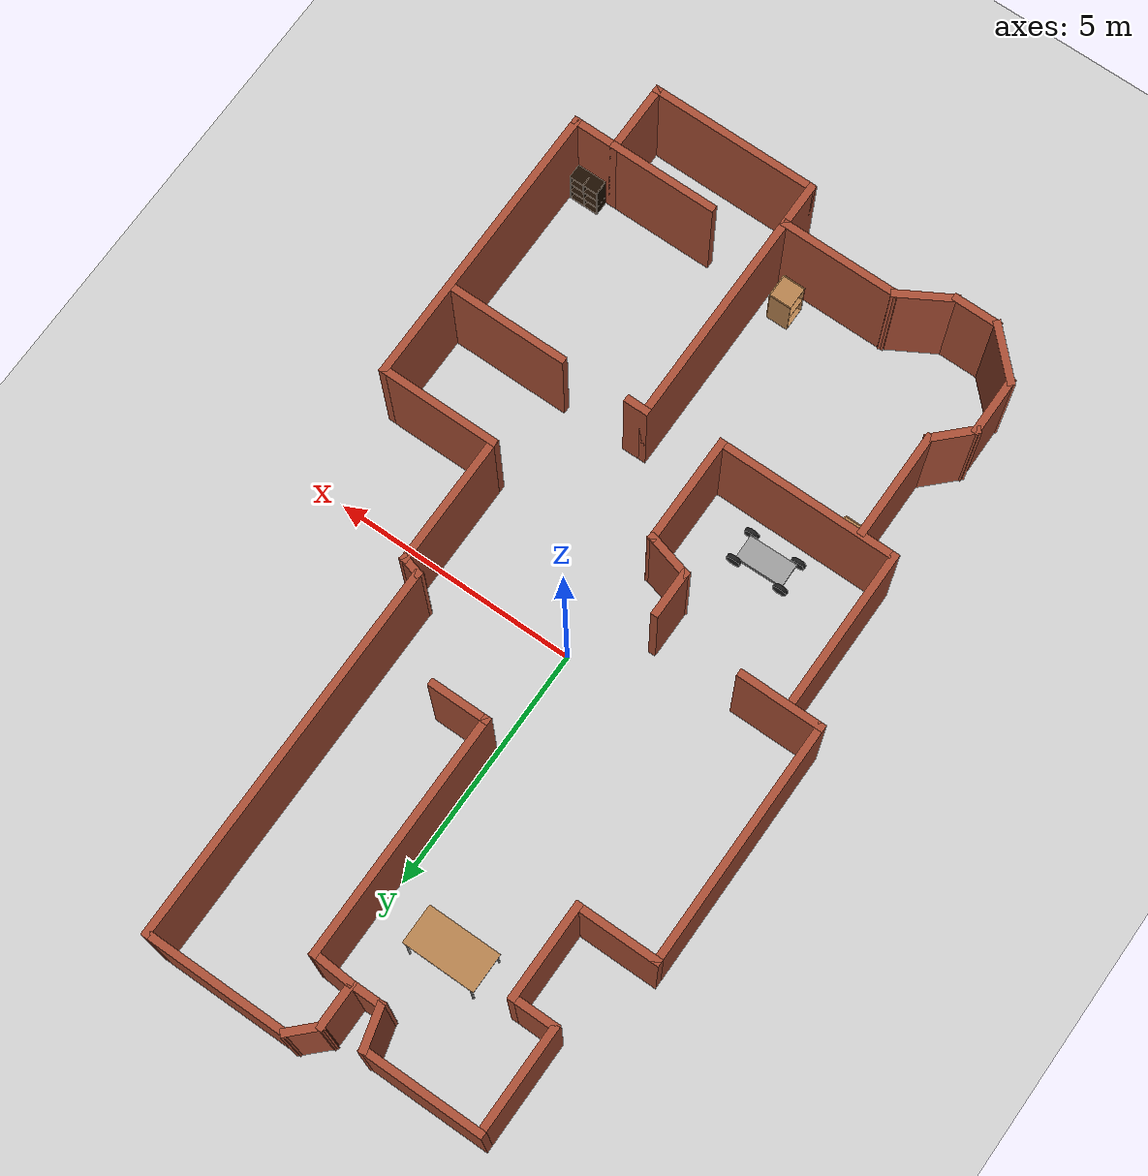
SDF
<sdf version="1.6">
 <world name="default">
  <light name="sun" type="directional">
   <pose>0 0 10 0 -0 0</pose>
   <diffuse>0.8 0.8 0.8 1</diffuse>
   <specular>0.2 0.2 0.2 1</specular>
   <attenuation>
    <range>1000</range>
    <constant>0.9</constant>
    <linear>0.01</linear>
    <quadratic>0.001</quadratic>
   </attenuation>
   <direction>-0.5 0.1 -0.9</direction>
  </light>
  <model name="ground_plane">
   <static>1</static>
   <link name="link">
    <collision name="collision">
     <geometry><plane><normal>0 0 1</normal><size>100 100</size></plane></geometry>
     <surface>
      <contact><collide_bitmask>65535</collide_bitmask></contact>
      <friction><ode><mu>100</mu><mu2>50</mu2></ode></friction>
     </surface>
    </collision>
    <visual name="visual">
     <cast_shadows>0</cast_shadows>
     <geometry><plane><normal>0 0 1</normal><size>100 100</size></plane></geometry>
     <material>
      <script><uri>file://media/materials/scripts/gazebo.material</uri><name>Gazebo/Grey</name></script>
     </material>
    </visual>
   </link>
  </model>
  <gravity>0 0 -9.8</gravity>
  <magnetic_field>6e-06 2.3e-05 -4.2e-05</magnetic_field>
  <atmosphere type="adiabatic"/>
  <physics name="default_physics" default="0" type="ode">
   <max_step_size>0.001</max_step_size>
   <real_time_factor>1</real_time_factor>
   <real_time_update_rate>1000</real_time_update_rate>
  </physics>
  <scene><ambient>0.4 0.4 0.4 1</ambient><background>0.7 0.7 0.7 1</background><shadows>1</shadows></scene>
  <audio><device>default</device></audio>
  <spherical_coordinates>
   <surface_model>EARTH_WGS84</surface_model>
   <latitude_deg>0</latitude_deg>
   <longitude_deg>0</longitude_deg>
   <elevation>0</elevation>
   <heading_deg>0</heading_deg>
  </spherical_coordinates>
  <model name="map_39">
   <pose>0.315575 -0.348174 0 0 -0 0</pose>
   <link name="Wall_0">
    <collision name="Wall_0_Collision">
     <geometry><box><size>2.5 0.15 2.5</size></box></geometry>
     <pose>0 0 1.25 0 -0 0</pose>
    </collision>
    <visual name="Wall_0_Visual">
     <pose>0 0 1.25 0 -0 0</pose>
     <geometry><box><size>2.5 0.15 2.5</size></box></geometry>
     <material>
      <script><uri>file://media/materials/scripts/gazebo.material</uri><name>Gazebo/Bricks</name></script>
      <ambient>1 1 1 1</ambient>
     </material>
     <meta><layer>0</layer></meta>
    </visual>
    <pose>-3.00691 8.2096 0 0 -0 3.14159</pose>
   </link>
   <link name="Wall_1">
    <collision name="Wall_1_Collision">
     <geometry><box><size>2.25 0.15 2.5</size></box></geometry>
     <pose>0 0 1.25 0 -0 0</pose>
    </collision>
    <visual name="Wall_1_Visual">
     <pose>0 0 1.25 0 -0 0</pose>
     <geometry><box><size>2.25 0.15 2.5</size></box></geometry>
     <material>
      <script><uri>file://media/materials/scripts/gazebo.material</uri><name>Gazebo/Bricks</name></script>
      <ambient>1 1 1 1</ambient>
     </material>
     <meta><layer>0</layer></meta>
    </visual>
    <pose>-4.18191 7.1596 0 0 -0 -1.5708</pose>
   </link>
   <link name="Wall_11">
    <collision name="Wall_11_Collision">
     <geometry><box><size>2.25 0.15 2.5</size></box></geometry>
     <pose>0 0 1.25 0 -0 0</pose>
    </collision>
    <visual name="Wall_11_Visual">
     <pose>0 0 1.25 0 -0 0</pose>
     <geometry><box><size>2.25 0.15 2.5</size></box></geometry>
     <material>
      <script><uri>file://media/materials/scripts/gazebo.material</uri><name>Gazebo/Bricks</name></script>
      <ambient>1 1 1 1</ambient>
     </material>
     <meta><layer>0</layer></meta>
    </visual>
    <pose>-3.59749 -4.93197 0 0 -0 -1.5708</pose>
   </link>
   <link name="Wall_12">
    <collision name="Wall_12_Collision">
     <geometry><box><size>1 0.15 2.5</size></box></geometry>
     <pose>0 0 1.25 0 -0 0</pose>
    </collision>
    <visual name="Wall_12_Visual">
     <pose>0 0 1.25 0 -0 0</pose>
     <geometry><box><size>1 0.15 2.5</size></box></geometry>
     <material>
      <script><uri>file://media/materials/scripts/gazebo.material</uri><name>Gazebo/Bricks</name></script>
      <ambient>1 1 1 1</ambient>
     </material>
     <meta><layer>0</layer></meta>
    </visual>
    <pose>-3.89801 -6.28249 0 0 -0 -2.35619</pose>
   </link>
   <link name="Wall_13">
    <collision name="Wall_13_Collision">
     <geometry><box><size>1.25 0.15 2.5</size></box></geometry>
     <pose>0 0 1.25 0 -0 0</pose>
    </collision>
    <visual name="Wall_13_Visual">
     <pose>0 0 1.25 0 -0 0</pose>
     <geometry><box><size>1.25 0.15 2.5</size></box></geometry>
     <material>
      <script><uri>file://media/materials/scripts/gazebo.material</uri><name>Gazebo/Bricks</name></script>
      <ambient>1 1 1 1</ambient>
     </material>
     <meta><layer>0</layer></meta>
    </visual>
    <pose>-4.19853 -7.13301 0 0 -0 -1.5708</pose>
   </link>
   <link name="Wall_14">
    <collision name="Wall_14_Collision">
     <geometry><box><size>1.25 0.15 2.5</size></box></geometry>
     <pose>0 0 1.25 0 -0 0</pose>
    </collision>
    <visual name="Wall_14_Visual">
     <pose>0 0 1.25 0 -0 0</pose>
     <geometry><box><size>1.25 0.15 2.5</size></box></geometry>
     <material>
      <script><uri>file://media/materials/scripts/gazebo.material</uri><name>Gazebo/Bricks</name></script>
      <ambient>1 1 1 1</ambient>
     </material>
     <meta><layer>0</layer></meta>
    </visual>
    <pose>-3.80963 -8.07192 0 0 -0 -0.785398</pose>
   </link>
   <link name="Wall_15">
    <collision name="Wall_15_Collision">
     <geometry><box><size>1 0.15 2.5</size></box></geometry>
     <pose>0 0 1.25 0 -0 0</pose>
    </collision>
    <visual name="Wall_15_Visual">
     <pose>0 0 1.25 0 -0 0</pose>
     <geometry><box><size>1 0.15 2.5</size></box></geometry>
     <material>
      <script><uri>file://media/materials/scripts/gazebo.material</uri><name>Gazebo/Bricks</name></script>
      <ambient>1 1 1 1</ambient>
     </material>
     <meta><layer>0</layer></meta>
    </visual>
    <pose>-2.99572 -8.46083 0 0 -0 0</pose>
   </link>
   <link name="Wall_16">
    <collision name="Wall_16_Collision">
     <geometry><box><size>1.25 0.15 2.5</size></box></geometry>
     <pose>0 0 1.25 0 -0 0</pose>
    </collision>
    <visual name="Wall_16_Visual">
     <pose>0 0 1.25 0 -0 0</pose>
     <geometry><box><size>1.25 0.15 2.5</size></box></geometry>
     <material>
      <script><uri>file://media/materials/scripts/gazebo.material</uri><name>Gazebo/Bricks</name></script>
      <ambient>1 1 1 1</ambient>
     </material>
     <meta><layer>0</layer></meta>
    </visual>
    <pose>-2.0944 -8.18583 0 0 -0 0.523599</pose>
   </link>
   <link name="Wall_17">
    <collision name="Wall_17_Collision">
     <geometry><box><size>2.5 0.15 2.5</size></box></geometry>
     <pose>0 0 1.25 0 -0 0</pose>
    </collision>
    <visual name="Wall_17_Visual">
     <pose>0 0 1.25 0 -0 0</pose>
     <geometry><box><size>2.5 0.15 2.5</size></box></geometry>
     <material>
      <script><uri>file://media/materials/scripts/gazebo.material</uri><name>Gazebo/Bricks</name></script>
      <ambient>1 1 1 1</ambient>
     </material>
     <meta><layer>0</layer></meta>
    </visual>
    <pose>-0.443089 -7.91083 0 0 -0 0</pose>
   </link>
   <link name="Wall_2">
    <collision name="Wall_2_Collision">
     <geometry><box><size>1 0.15 2.5</size></box></geometry>
     <pose>0 0 1.25 0 -0 0</pose>
    </collision>
    <visual name="Wall_2_Visual">
     <pose>0 0 1.25 0 -0 0</pose>
     <geometry><box><size>1 0.15 2.5</size></box></geometry>
     <material>
      <script><uri>file://media/materials/scripts/gazebo.material</uri><name>Gazebo/Bricks</name></script>
      <ambient>1 1 1 1</ambient>
     </material>
     <meta><layer>0</layer></meta>
    </visual>
    <pose>-3.75691 6.1096 0 0 -0 0</pose>
   </link>
   <link name="Wall_20">
    <collision name="Wall_20_Collision">
     <geometry><box><size>1 0.15 2.5</size></box></geometry>
     <pose>0 0 1.25 0 -0 0</pose>
    </collision>
    <visual name="Wall_20_Visual">
     <pose>0 0 1.25 0 -0 0</pose>
     <geometry><box><size>1 0.15 2.5</size></box></geometry>
     <material>
      <script><uri>file://media/materials/scripts/gazebo.material</uri><name>Gazebo/Bricks</name></script>
      <ambient>1 1 1 1</ambient>
     </material>
     <meta><layer>0</layer></meta>
    </visual>
    <pose>0.731911 -8.33583 0 0 -0 -1.5708</pose>
   </link>
   <link name="Wall_21">
    <collision name="Wall_21_Collision">
     <geometry><box><size>3.5 0.15 2.5</size></box></geometry>
     <pose>0 0 1.25 0 -0 0</pose>
    </collision>
    <visual name="Wall_21_Visual">
     <pose>0 0 1.25 0 -0 0</pose>
     <geometry><box><size>3.5 0.15 2.5</size></box></geometry>
     <material>
      <script><uri>file://media/materials/scripts/gazebo.material</uri><name>Gazebo/Bricks</name></script>
      <ambient>1 1 1 1</ambient>
     </material>
     <meta><layer>0</layer></meta>
    </visual>
    <pose>2.40691 -8.76083 0 0 -0 0</pose>
   </link>
   <link name="Wall_22">
    <collision name="Wall_22_Collision">
     <geometry><box><size>1.5 0.15 2.5</size></box></geometry>
     <pose>0 0 1.25 0 -0 0</pose>
    </collision>
    <visual name="Wall_22_Visual">
     <pose>0 0 1.25 0 -0 0</pose>
     <geometry><box><size>1.5 0.15 2.5</size></box></geometry>
     <material>
      <script><uri>file://media/materials/scripts/gazebo.material</uri><name>Gazebo/Bricks</name></script>
      <ambient>1 1 1 1</ambient>
     </material>
     <meta><layer>0</layer></meta>
    </visual>
    <pose>4.08191 -8.08583 0 0 -0 1.5708</pose>
   </link>
   <link name="Wall_23">
    <collision name="Wall_23_Collision">
     <geometry><box><size>1 0.15 2.5</size></box></geometry>
     <pose>0 0 1.25 0 -0 0</pose>
    </collision>
    <visual name="Wall_23_Visual">
     <pose>0 0 1.25 0 -0 0</pose>
     <geometry><box><size>1 0.15 2.5</size></box></geometry>
     <material>
      <script><uri>file://media/materials/scripts/gazebo.material</uri><name>Gazebo/Bricks</name></script>
      <ambient>1 1 1 1</ambient>
     </material>
     <meta><layer>0</layer></meta>
    </visual>
    <pose>4.50691 -7.41083 0 0 -0 0</pose>
   </link>
   <link name="Wall_24">
    <collision name="Wall_24_Collision">
     <geometry><box><size>6 0.15 2.5</size></box></geometry>
     <pose>0 0 1.25 0 -0 0</pose>
    </collision>
    <visual name="Wall_24_Visual">
     <pose>0 0 1.25 0 -0 0</pose>
     <geometry><box><size>6 0.15 2.5</size></box></geometry>
     <material>
      <script><uri>file://media/materials/scripts/gazebo.material</uri><name>Gazebo/Bricks</name></script>
      <ambient>1 1 1 1</ambient>
     </material>
     <meta><layer>0</layer></meta>
    </visual>
    <pose>4.93191 -4.48583 0 0 -0 1.5708</pose>
   </link>
   <link name="Wall_25">
    <collision name="Wall_25_Collision">
     <geometry><box><size>2.5 0.15 2.5</size></box></geometry>
     <pose>0 0 1.25 0 -0 0</pose>
    </collision>
    <visual name="Wall_25_Visual">
     <pose>0 0 1.25 0 -0 0</pose>
     <geometry><box><size>2.5 0.15 2.5</size></box></geometry>
     <material>
      <script><uri>file://media/materials/scripts/gazebo.material</uri><name>Gazebo/Bricks</name></script>
      <ambient>1 1 1 1</ambient>
     </material>
     <meta><layer>0</layer></meta>
    </visual>
    <pose>3.75691 -1.56083 0 0 -0 3.14159</pose>
   </link>
   <link name="Wall_26">
    <collision name="Wall_26_Collision">
     <geometry><box><size>2.75 0.15 2.5</size></box></geometry>
     <pose>0 0 1.25 0 -0 0</pose>
    </collision>
    <visual name="Wall_26_Visual">
     <pose>0 0 1.25 0 -0 0</pose>
     <geometry><box><size>2.75 0.15 2.5</size></box></geometry>
     <material>
      <script><uri>file://media/materials/scripts/gazebo.material</uri><name>Gazebo/Bricks</name></script>
      <ambient>1 1 1 1</ambient>
     </material>
     <meta><layer>0</layer></meta>
    </visual>
    <pose>2.58191 -0.260826 0 0 -0 1.5708</pose>
   </link>
   <link name="Wall_27">
    <collision name="Wall_27_Collision">
     <geometry><box><size>0.5 0.15 2.5</size></box></geometry>
     <pose>0 0 1.25 0 -0 0</pose>
    </collision>
    <visual name="Wall_27_Visual">
     <pose>0 0 1.25 0 -0 0</pose>
     <geometry><box><size>0.5 0.15 2.5</size></box></geometry>
     <material>
      <script><uri>file://media/materials/scripts/gazebo.material</uri><name>Gazebo/Bricks</name></script>
      <ambient>1 1 1 1</ambient>
     </material>
     <meta><layer>0</layer></meta>
    </visual>
    <pose>2.41287 1.08447 0 0 -0 2.87979</pose>
   </link>
   <link name="Wall_28">
    <collision name="Wall_28_Collision">
     <geometry><box><size>7.75 0.15 2.5</size></box></geometry>
     <pose>0 0 1.25 0 -0 0</pose>
    </collision>
    <visual name="Wall_28_Visual">
     <pose>0 0 1.25 0 -0 0</pose>
     <geometry><box><size>7.75 0.15 2.5</size></box></geometry>
     <material>
      <script><uri>file://media/materials/scripts/gazebo.material</uri><name>Gazebo/Bricks</name></script>
      <ambient>1 1 1 1</ambient>
     </material>
     <meta><layer>0</layer></meta>
    </visual>
    <pose>2.24384 4.92976 0 0 -0 1.5708</pose>
   </link>
   <link name="Wall_29">
    <collision name="Wall_29_Collision">
     <geometry><box><size>3 0.15 2.5</size></box></geometry>
     <pose>0 0 1.25 0 -0 0</pose>
    </collision>
    <visual name="Wall_29_Visual">
     <pose>0 0 1.25 0 -0 0</pose>
     <geometry><box><size>3 0.15 2.5</size></box></geometry>
     <material>
      <script><uri>file://media/materials/scripts/gazebo.material</uri><name>Gazebo/Bricks</name></script>
      <ambient>1 1 1 1</ambient>
     </material>
     <meta><layer>0</layer></meta>
    </visual>
    <pose>0.818837 8.72976 0 0 -0 3.14159</pose>
   </link>
   <link name="Wall_3">
    <collision name="Wall_3_Collision">
     <geometry><box><size>2 0.15 2.5</size></box></geometry>
     <pose>0 0 1.25 0 -0 0</pose>
    </collision>
    <visual name="Wall_3_Visual">
     <pose>0 0 1.25 0 -0 0</pose>
     <geometry><box><size>2 0.15 2.5</size></box></geometry>
     <material>
      <script><uri>file://media/materials/scripts/gazebo.material</uri><name>Gazebo/Bricks</name></script>
      <ambient>1 1 1 1</ambient>
     </material>
     <meta><layer>0</layer></meta>
    </visual>
    <pose>-3.33191 5.1846 0 0 -0 -1.5708</pose>
   </link>
   <link name="Wall_30">
    <collision name="Wall_30_Collision">
     <geometry><box><size>0.75 0.15 2.5</size></box></geometry>
     <pose>0 0 1.25 0 -0 0</pose>
    </collision>
    <visual name="Wall_30_Visual">
     <pose>0 0 1.25 0 -0 0</pose>
     <geometry><box><size>0.75 0.15 2.5</size></box></geometry>
     <material>
      <script><uri>file://media/materials/scripts/gazebo.material</uri><name>Gazebo/Bricks</name></script>
      <ambient>1 1 1 1</ambient>
     </material>
     <meta><layer>0</layer></meta>
    </visual>
    <pose>-0.818295 8.51763 0 0 -0 -2.35619</pose>
   </link>
   <link name="Wall_31">
    <collision name="Wall_31_Collision">
     <geometry><box><size>1 0.15 2.5</size></box></geometry>
     <pose>0 0 1.25 0 -0 0</pose>
    </collision>
    <visual name="Wall_31_Visual">
     <pose>0 0 1.25 0 -0 0</pose>
     <geometry><box><size>1 0.15 2.5</size></box></geometry>
     <material>
      <script><uri>file://media/materials/scripts/gazebo.material</uri><name>Gazebo/Bricks</name></script>
      <ambient>1 1 1 1</ambient>
     </material>
     <meta><layer>0</layer></meta>
    </visual>
    <pose>-1.03043 7.8805 0 0 -0 -1.5708</pose>
   </link>
   <link name="Wall_32">
    <collision name="Wall_32_Collision">
     <geometry><box><size>0.75 0.15 2.5</size></box></geometry>
     <pose>0 0 1.25 0 -0 0</pose>
    </collision>
    <visual name="Wall_32_Visual">
     <pose>0 0 1.25 0 -0 0</pose>
     <geometry><box><size>0.75 0.15 2.5</size></box></geometry>
     <material>
      <script><uri>file://media/materials/scripts/gazebo.material</uri><name>Gazebo/Bricks</name></script>
      <ambient>1 1 1 1</ambient>
     </material>
     <meta><layer>0</layer></meta>
    </visual>
    <pose>-1.33043 7.4555 0 0 -0 3.14159</pose>
   </link>
   <link name="Wall_33">
    <collision name="Wall_33_Collision">
     <geometry><box><size>0.930554 0.15 2.5</size></box></geometry>
     <pose>0 0 1.25 0 -0 0</pose>
    </collision>
    <visual name="Wall_33_Visual">
     <pose>0 0 1.25 0 -0 0</pose>
     <geometry><box><size>0.930554 0.15 2.5</size></box></geometry>
     <material>
      <script><uri>file://media/materials/scripts/gazebo.material</uri><name>Gazebo/Bricks</name></script>
      <ambient>1 1 1 1</ambient>
     </material>
     <meta><layer>0</layer></meta>
    </visual>
    <pose>-1.73117 7.83255 0 0 -0 1.83188</pose>
   </link>
   <link name="Wall_35">
    <collision name="Wall_35_Collision">
     <geometry><box><size>2.5 0.15 2.5</size></box></geometry>
     <pose>0 0 1.25 0 -0 0</pose>
    </collision>
    <visual name="Wall_35_Visual">
     <pose>0 0 1.25 0 -0 0</pose>
     <geometry><box><size>2.5 0.15 2.5</size></box></geometry>
     <material>
      <script><uri>file://media/materials/scripts/gazebo.material</uri><name>Gazebo/Bricks</name></script>
      <ambient>1 1 1 1</ambient>
     </material>
     <meta><layer>0</layer></meta>
    </visual>
    <pose>3.67679 -3.50745 0 0 -0 0</pose>
   </link>
   <link name="Wall_37">
    <collision name="Wall_37_Collision">
     <geometry><box><size>2.25 0.15 2.5</size></box></geometry>
     <pose>0 0 1.25 0 -0 0</pose>
    </collision>
    <visual name="Wall_37_Visual">
     <pose>0 0 1.25 0 -0 0</pose>
     <geometry><box><size>2.25 0.15 2.5</size></box></geometry>
     <material>
      <script><uri>file://media/materials/scripts/gazebo.material</uri><name>Gazebo/Bricks</name></script>
      <ambient>1 1 1 1</ambient>
     </material>
     <meta><layer>0</layer></meta>
    </visual>
    <pose>3.03191 -7.41083 0 0 -0 3.14159</pose>
   </link>
   <link name="Wall_4">
    <collision name="Wall_4_Collision">
     <geometry><box><size>1.75 0.15 2.5</size></box></geometry>
     <pose>0 0 1.25 0 -0 0</pose>
    </collision>
    <visual name="Wall_4_Visual">
     <pose>0 0 1.25 0 -0 0</pose>
     <geometry><box><size>1.75 0.15 2.5</size></box></geometry>
     <material>
      <script><uri>file://media/materials/scripts/gazebo.material</uri><name>Gazebo/Bricks</name></script>
      <ambient>1 1 1 1</ambient>
     </material>
     <meta><layer>0</layer></meta>
    </visual>
    <pose>-4.13191 4.2596 0 0 -0 3.14159</pose>
   </link>
   <link name="Wall_41">
    <collision name="Wall_41_Collision">
     <geometry><box><size>3.75 0.15 2.5</size></box></geometry>
     <pose>0 0 1.25 0 -0 0</pose>
    </collision>
    <visual name="Wall_41_Visual">
     <pose>0 0 1.25 0 -0 0</pose>
     <geometry><box><size>3.75 0.15 2.5</size></box></geometry>
     <material>
      <script><uri>file://media/materials/scripts/gazebo.material</uri><name>Gazebo/Bricks</name></script>
      <ambient>1 1 1 1</ambient>
     </material>
     <meta><layer>0</layer></meta>
    </visual>
    <pose>-2.49303 -3.82532 0 0 -0 0</pose>
   </link>
   <link name="Wall_42">
    <collision name="Wall_42_Collision">
     <geometry><box><size>2.25 0.15 2.5</size></box></geometry>
     <pose>0 0 1.25 0 -0 0</pose>
    </collision>
    <visual name="Wall_42_Visual">
     <pose>0 0 1.25 0 -0 0</pose>
     <geometry><box><size>2.25 0.15 2.5</size></box></geometry>
     <material>
      <script><uri>file://media/materials/scripts/gazebo.material</uri><name>Gazebo/Bricks</name></script>
      <ambient>1 1 1 1</ambient>
     </material>
     <meta><layer>0</layer></meta>
    </visual>
    <pose>-0.693026 -2.77532 0 0 -0 1.5708</pose>
   </link>
   <link name="Wall_43">
    <collision name="Wall_43_Collision">
     <geometry><box><size>1 0.15 2.5</size></box></geometry>
     <pose>0 0 1.25 0 -0 0</pose>
    </collision>
    <visual name="Wall_43_Visual">
     <pose>0 0 1.25 0 -0 0</pose>
     <geometry><box><size>1 0.15 2.5</size></box></geometry>
     <material>
      <script><uri>file://media/materials/scripts/gazebo.material</uri><name>Gazebo/Bricks</name></script>
      <ambient>1 1 1 1</ambient>
     </material>
     <meta><layer>0</layer></meta>
    </visual>
    <pose>-1.10354 -1.61532 0 0 -0 2.87979</pose>
   </link>
   <link name="Wall_44">
    <collision name="Wall_44_Collision">
     <geometry><box><size>1 0.15 2.5</size></box></geometry>
     <pose>0 0 1.25 0 -0 0</pose>
    </collision>
    <visual name="Wall_44_Visual">
     <pose>0 0 1.25 0 -0 0</pose>
     <geometry><box><size>1 0.15 2.5</size></box></geometry>
     <material>
      <script><uri>file://media/materials/scripts/gazebo.material</uri><name>Gazebo/Bricks</name></script>
      <ambient>1 1 1 1</ambient>
     </material>
     <meta><layer>0</layer></meta>
    </visual>
    <pose>-1.51406 -1.08032 0 0 -0 1.5708</pose>
   </link>
   <link name="Wall_46">
    <collision name="Wall_46_Collision">
     <geometry><box><size>5 0.15 2.5</size></box></geometry>
     <pose>0 0 1.25 0 -0 0</pose>
    </collision>
    <visual name="Wall_46_Visual">
     <pose>0 0 1.25 0 -0 0</pose>
     <geometry><box><size>5 0.15 2.5</size></box></geometry>
     <material>
      <script><uri>file://media/materials/scripts/gazebo.material</uri><name>Gazebo/Bricks</name></script>
      <ambient>1 1 1 1</ambient>
     </material>
     <meta><layer>0</layer></meta>
    </visual>
    <pose>-0.226836 4.98206 0 0 -0 -1.5708</pose>
   </link>
   <link name="Wall_47">
    <collision name="Wall_47_Collision">
     <geometry><box><size>1.25 0.15 2.5</size></box></geometry>
     <pose>0 0 1.25 0 -0 0</pose>
    </collision>
    <visual name="Wall_47_Visual">
     <pose>0 0 1.25 0 -0 0</pose>
     <geometry><box><size>1.25 0.15 2.5</size></box></geometry>
     <material>
      <script><uri>file://media/materials/scripts/gazebo.material</uri><name>Gazebo/Bricks</name></script>
      <ambient>1 1 1 1</ambient>
     </material>
     <meta><layer>0</layer></meta>
    </visual>
    <pose>0.323164 2.55706 0 0 -0 0</pose>
   </link>
   <link name="Wall_49">
    <collision name="Wall_49_Collision">
     <geometry><box><size>0.955049 0.15 2.5</size></box></geometry>
     <pose>0 0 1.25 0 -0 0</pose>
    </collision>
    <visual name="Wall_49_Visual">
     <pose>0 0 1.25 0 -0 0</pose>
     <geometry><box><size>0.955049 0.15 2.5</size></box></geometry>
     <material>
      <script><uri>file://media/materials/scripts/gazebo.material</uri><name>Gazebo/Bricks</name></script>
      <ambient>1 1 1 1</ambient>
     </material>
     <meta><layer>0</layer></meta>
    </visual>
    <pose>-0.628631 7.43128 0 0 -0 3.08139</pose>
   </link>
   <link name="Wall_5">
    <collision name="Wall_5_Collision">
     <geometry><box><size>5 0.15 2.5</size></box></geometry>
     <pose>0 0 1.25 0 -0 0</pose>
    </collision>
    <visual name="Wall_5_Visual">
     <pose>0 0 1.25 0 -0 0</pose>
     <geometry><box><size>5 0.15 2.5</size></box></geometry>
     <material>
      <script><uri>file://media/materials/scripts/gazebo.material</uri><name>Gazebo/Bricks</name></script>
      <ambient>1 1 1 1</ambient>
     </material>
     <meta><layer>0</layer></meta>
    </visual>
    <pose>-4.93191 1.8346 0 0 -0 -1.5708</pose>
   </link>
   <link name="Wall_52">
    <collision name="Wall_52_Collision">
     <geometry><box><size>4.5 0.15 2.5</size></box></geometry>
     <pose>0 0 1.25 0 -0 0</pose>
    </collision>
    <visual name="Wall_52_Visual">
     <pose>0 0 1.25 0 -0 0</pose>
     <geometry><box><size>4.5 0.15 2.5</size></box></geometry>
     <material>
      <script><uri>file://media/materials/scripts/gazebo.material</uri><name>Gazebo/Bricks</name></script>
      <ambient>1 1 1 1</ambient>
     </material>
     <meta><layer>0</layer></meta>
    </visual>
    <pose>0.731911 -5.73583 0 0 -0 1.5708</pose>
   </link>
   <link name="Wall_53">
    <collision name="Wall_53_Collision">
     <geometry><box><size>0.5 0.15 2.5</size></box></geometry>
     <pose>0 0 1.25 0 -0 0</pose>
    </collision>
    <visual name="Wall_53_Visual">
     <pose>0 0 1.25 0 -0 0</pose>
     <geometry><box><size>0.5 0.15 2.5</size></box></geometry>
     <material>
      <script><uri>file://media/materials/scripts/gazebo.material</uri><name>Gazebo/Bricks</name></script>
      <ambient>1 1 1 1</ambient>
     </material>
     <meta><layer>0</layer></meta>
    </visual>
    <pose>0.906911 -3.56083 0 0 -0 0</pose>
   </link>
   <link name="Wall_6">
    <collision name="Wall_6_Collision">
     <geometry><box><size>1.75 0.15 2.5</size></box></geometry>
     <pose>0 0 1.25 0 -0 0</pose>
    </collision>
    <visual name="Wall_6_Visual">
     <pose>0 0 1.25 0 -0 0</pose>
     <geometry><box><size>1.75 0.15 2.5</size></box></geometry>
     <material>
      <script><uri>file://media/materials/scripts/gazebo.material</uri><name>Gazebo/Bricks</name></script>
      <ambient>1 1 1 1</ambient>
     </material>
     <meta><layer>0</layer></meta>
    </visual>
    <pose>-4.13191 -0.590403 0 0 -0 0</pose>
   </link>
   <link name="Wall_8">
    <collision name="Wall_8_Collision">
     <geometry><box><size>3.25 0.15 2.5</size></box></geometry>
     <pose>0 0 1.25 0 -0 0</pose>
    </collision>
    <visual name="Wall_8_Visual">
     <pose>0 0 1.25 0 -0 0</pose>
     <geometry><box><size>3.25 0.15 2.5</size></box></geometry>
     <material>
      <script><uri>file://media/materials/scripts/gazebo.material</uri><name>Gazebo/Bricks</name></script>
      <ambient>1 1 1 1</ambient>
     </material>
     <meta><layer>0</layer></meta>
    </visual>
    <pose>-4.29303 -2.27532 0 0 -0 -1.5708</pose>
   </link>
   <static>1</static>
  </model>
  <model name="table">
   <static>1</static>
   <link name="link">
    <collision name="surface">
     <pose>0 0 1 0 -0 0</pose>
     <geometry><box><size>1.5 0.8 0.03</size></box></geometry>
     <surface><friction><ode><mu>0.6</mu><mu2>0.6</mu2></ode></friction></surface>
    </collision>
    <visual name="visual1">
     <pose>0 0 1 0 -0 0</pose>
     <geometry><box><size>1.5 0.8 0.03</size></box></geometry>
     <material>
      <script><uri>file://media/materials/scripts/gazebo.material</uri><name>Gazebo/Wood</name></script>
     </material>
    </visual>
    <collision name="front_left_leg">
     <pose>0.68 0.38 0.5 0 -0 0</pose>
     <geometry><cylinder><radius>0.02</radius><length>1</length></cylinder></geometry>
    </collision>
    <visual name="front_left_leg">
     <pose>0.68 0.38 0.5 0 -0 0</pose>
     <geometry><cylinder><radius>0.02</radius><length>1</length></cylinder></geometry>
     <material>
      <script><uri>file://media/materials/scripts/gazebo.material</uri><name>Gazebo/Grey</name></script>
     </material>
    </visual>
    <collision name="front_right_leg">
     <pose>0.68 -0.38 0.5 0 -0 0</pose>
     <geometry><cylinder><radius>0.02</radius><length>1</length></cylinder></geometry>
    </collision>
    <visual name="front_right_leg">
     <pose>0.68 -0.38 0.5 0 -0 0</pose>
     <geometry><cylinder><radius>0.02</radius><length>1</length></cylinder></geometry>
     <material>
      <script><uri>file://media/materials/scripts/gazebo.material</uri><name>Gazebo/Grey</name></script>
     </material>
    </visual>
    <collision name="back_right_leg">
     <pose>-0.68 -0.38 0.5 0 -0 0</pose>
     <geometry><cylinder><radius>0.02</radius><length>1</length></cylinder></geometry>
    </collision>
    <visual name="back_right_leg">
     <pose>-0.68 -0.38 0.5 0 -0 0</pose>
     <geometry><cylinder><radius>0.02</radius><length>1</length></cylinder></geometry>
     <material>
      <script><uri>file://media/materials/scripts/gazebo.material</uri><name>Gazebo/Grey</name></script>
     </material>
    </visual>
    <collision name="back_left_leg">
     <pose>-0.68 0.38 0.5 0 -0 0</pose>
     <geometry><cylinder><radius>0.02</radius><length>1</length></cylinder></geometry>
    </collision>
    <visual name="back_left_leg">
     <pose>-0.68 0.38 0.5 0 -0 0</pose>
     <geometry><cylinder><radius>0.02</radius><length>1</length></cylinder></geometry>
     <material>
      <script><uri>file://media/materials/scripts/gazebo.material</uri><name>Gazebo/Grey</name></script>
     </material>
    </visual>
   </link>
   <pose>-1.51549 5.54579 0 0 -0 0</pose>
  </model>
  <model name="6_Cube_StorageE">
   <link name="Wall_0">
    <pose>0 0 0.01 0 -0 0</pose>
    <inertial>
     <mass>1.6201</mass>
     <inertia><ixx>0.0119</ixx><iyy>0.0631</iyy><izz>0.0513</izz><ixy>0</ixy><ixz>0</ixz><iyz>0</iyz></inertia>
    </inertial>
    <collision name="Wall_0_Collision"><geometry><box><size>0.616 0.296 0.02</size></box></geometry></collision>
    <visual name="Wall_0_Visual">
     <geometry><box><size>0.616 0.296 0.02</size></box></geometry>
     <material>
      <script><uri>file://media/materials/scripts/gazebo.material</uri><name>Gazebo/Grey</name></script>
      <ambient>0.105882 0.0509804 0 1</ambient>
     </material>
    </visual>
   </link>
   <joint name="0_2" type="fixed">
    <pose>-0.308 0 0 0 -0 0</pose>
    <parent>Wall_2</parent>
    <child>Wall_0</child>
    <axis>
     <xyz>1 0 0</xyz>
     <use_parent_model_frame>0</use_parent_model_frame>
     <limit><lower>-1e+16</lower><upper>1e+16</upper></limit>
    </axis>
   </joint>
   <joint name="0_12" type="fixed">
    <parent>Wall_12</parent>
    <child>Wall_0</child>
    <axis>
     <xyz>0 0 1</xyz>
     <use_parent_model_frame>0</use_parent_model_frame>
     <limit><lower>-1e+16</lower><upper>1e+16</upper></limit>
    </axis>
   </joint>
   <joint name="0_4" type="fixed">
    <pose>0.308 0 0 0 -0 0</pose>
    <parent>Wall_4</parent>
    <child>Wall_0</child>
    <axis>
     <xyz>1 0 0</xyz>
     <use_parent_model_frame>0</use_parent_model_frame>
     <limit><lower>-1e+16</lower><upper>1e+16</upper></limit>
    </axis>
   </joint>
   <link name="Wall_10">
    <pose>0 0 0.61 0 -0 0</pose>
    <inertial>
     <mass>1.6201</mass>
     <inertia><ixx>0.0119</ixx><iyy>0.0631</iyy><izz>0.0513</izz><ixy>0</ixy><ixz>0</ixz><iyz>0</iyz></inertia>
    </inertial>
    <collision name="Wall_10_Collision"><geometry><box><size>0.616 0.296 0.02</size></box></geometry></collision>
    <visual name="Wall_10_Visual">
     <geometry><box><size>0.616 0.296 0.02</size></box></geometry>
     <material>
      <script><uri>file://media/materials/scripts/gazebo.material</uri><name>Gazebo/Grey</name></script>
      <ambient>0.105882 0.0509804 0 1</ambient>
     </material>
    </visual>
   </link>
   <joint name="10_2" type="fixed">
    <pose>-0.308 0 0 0 -0 0</pose>
    <parent>Wall_2</parent>
    <child>Wall_10</child>
    <axis>
     <xyz>1 0 0</xyz>
     <use_parent_model_frame>0</use_parent_model_frame>
     <limit><lower>-1e+16</lower><upper>1e+16</upper></limit>
    </axis>
   </joint>
   <joint name="10_12" type="fixed">
    <parent>Wall_12</parent>
    <child>Wall_10</child>
    <axis>
     <xyz>0 0 1</xyz>
     <use_parent_model_frame>0</use_parent_model_frame>
     <limit><lower>-1e+16</lower><upper>1e+16</upper></limit>
    </axis>
   </joint>
   <joint name="10_4" type="fixed">
    <pose>0.308 0 0 0 -0 0</pose>
    <parent>Wall_4</parent>
    <child>Wall_10</child>
    <axis>
     <xyz>1 0 0</xyz>
     <use_parent_model_frame>0</use_parent_model_frame>
     <limit><lower>-1e+16</lower><upper>1e+16</upper></limit>
    </axis>
   </joint>
   <link name="Wall_12">
    <pose>0 0 0.4575 0 -0 0</pose>
    <inertial>
     <mass>2.4065</mass>
     <inertia><ixx>0.0177</ixx><iyy>0.1855</iyy><izz>0.168</izz><ixy>0</ixy><ixz>0</ixz><iyz>0</iyz></inertia>
    </inertial>
    <collision name="Wall_12_Collision"><geometry><box><size>0.02 0.296 0.915</size></box></geometry></collision>
    <visual name="Wall_12_Visual">
     <geometry><box><size>0.02 0.296 0.915</size></box></geometry>
     <material>
      <script><uri>file://media/materials/scripts/gazebo.material</uri><name>Gazebo/Grey</name></script>
      <ambient>0.105882 0.0509804 0 1</ambient>
     </material>
    </visual>
   </link>
   <link name="Wall_2">
    <pose>-0.298 0 0.4575 0 -0 0</pose>
    <inertial>
     <mass>2.4065</mass>
     <inertia><ixx>0.0177</ixx><iyy>0.1855</iyy><izz>0.168</izz><ixy>0</ixy><ixz>0</ixz><iyz>0</iyz></inertia>
    </inertial>
    <collision name="Wall_2_Collision"><geometry><box><size>0.02 0.296 0.915</size></box></geometry></collision>
    <visual name="Wall_2_Visual">
     <geometry><box><size>0.02 0.296 0.915</size></box></geometry>
     <material>
      <script><uri>file://media/materials/scripts/gazebo.material</uri><name>Gazebo/Grey</name></script>
      <ambient>0.105882 0.0509804 0 1</ambient>
     </material>
    </visual>
   </link>
   <link name="Wall_4">
    <pose>0.298 0 0.4575 0 -0 0</pose>
    <inertial>
     <mass>2.4065</mass>
     <inertia><ixx>0.0177</ixx><iyy>0.1855</iyy><izz>0.168</izz><ixy>0</ixy><ixz>0</ixz><iyz>0</iyz></inertia>
    </inertial>
    <collision name="Wall_4_Collision"><geometry><box><size>0.02 0.296 0.915</size></box></geometry></collision>
    <visual name="Wall_4_Visual">
     <geometry><box><size>0.02 0.296 0.915</size></box></geometry>
     <material>
      <script><uri>file://media/materials/scripts/gazebo.material</uri><name>Gazebo/Grey</name></script>
      <ambient>0.105882 0.0509804 0 1</ambient>
     </material>
    </visual>
   </link>
   <link name="Wall_6">
    <pose>0 0 0.905 0 -0 0</pose>
    <inertial>
     <mass>1.6201</mass>
     <inertia><ixx>0.0119</ixx><iyy>0.0631</iyy><izz>0.0513</izz><ixy>0</ixy><ixz>0</ixz><iyz>0</iyz></inertia>
    </inertial>
    <collision name="Wall_6_Collision"><geometry><box><size>0.616 0.296 0.02</size></box></geometry></collision>
    <visual name="Wall_6_Visual">
     <geometry><box><size>0.616 0.296 0.02</size></box></geometry>
     <material>
      <script><uri>file://media/materials/scripts/gazebo.material</uri><name>Gazebo/Grey</name></script>
      <ambient>0.105882 0.0509804 0 1</ambient>
     </material>
    </visual>
   </link>
   <joint name="6_2" type="fixed">
    <pose>-0.308 0 0 0 -0 0</pose>
    <parent>Wall_2</parent>
    <child>Wall_6</child>
    <axis>
     <xyz>2 0 0</xyz>
     <use_parent_model_frame>0</use_parent_model_frame>
     <limit><lower>-1e+16</lower><upper>1e+16</upper></limit>
    </axis>
   </joint>
   <joint name="6_12" type="fixed">
    <parent>Wall_12</parent>
    <child>Wall_6</child>
    <axis>
     <xyz>0 0 1</xyz>
     <use_parent_model_frame>0</use_parent_model_frame>
     <limit><lower>-1e+16</lower><upper>1e+16</upper></limit>
    </axis>
   </joint>
   <joint name="6_4" type="fixed">
    <pose>0.308 0 0 0 -0 0</pose>
    <parent>Wall_4</parent>
    <child>Wall_6</child>
    <axis>
     <xyz>1 0 0</xyz>
     <use_parent_model_frame>0</use_parent_model_frame>
     <limit><lower>-1e+16</lower><upper>1e+16</upper></limit>
    </axis>
   </joint>
   <link name="Wall_8">
    <pose>0 0 0.305 0 -0 0</pose>
    <inertial>
     <mass>1.6201</mass>
     <inertia><ixx>0.0119</ixx><iyy>0.0631</iyy><izz>0.0513</izz><ixy>0</ixy><ixz>0</ixz><iyz>0</iyz></inertia>
    </inertial>
    <collision name="Wall_8_Collision"><geometry><box><size>0.616 0.296 0.02</size></box></geometry></collision>
    <visual name="Wall_8_Visual">
     <geometry><box><size>0.616 0.296 0.02</size></box></geometry>
     <material>
      <script><uri>file://media/materials/scripts/gazebo.material</uri><name>Gazebo/Grey</name></script>
      <ambient>0.105882 0.0509804 0 1</ambient>
     </material>
    </visual>
   </link>
   <joint name="8_2" type="fixed">
    <pose>-0.308 0 0 0 -0 0</pose>
    <parent>Wall_2</parent>
    <child>Wall_8</child>
    <axis>
     <xyz>1 0 0</xyz>
     <use_parent_model_frame>0</use_parent_model_frame>
     <limit><lower>-1e+16</lower><upper>1e+16</upper></limit>
    </axis>
   </joint>
   <joint name="8_12" type="fixed">
    <parent>Wall_12</parent>
    <child>Wall_8</child>
    <axis>
     <xyz>0 0 1</xyz>
     <use_parent_model_frame>0</use_parent_model_frame>
     <limit><lower>-1e+16</lower><upper>1e+16</upper></limit>
    </axis>
   </joint>
   <joint name="8_4" type="fixed">
    <pose>0.308 0 0 0 -0 0</pose>
    <parent>Wall_4</parent>
    <child>Wall_8</child>
    <axis>
     <xyz>1 0 0</xyz>
     <use_parent_model_frame>0</use_parent_model_frame>
     <limit><lower>-1e+16</lower><upper>1e+16</upper></limit>
    </axis>
   </joint>
   <static>1</static>
   <pose>4.78778 -4.10818 0 0 -0 0</pose>
  </model>
  <model name="6_Cube_StorageE_0">
   <link name="Wall_0">
    <pose>0 0 0.01 0 -0 0</pose>
    <inertial>
     <mass>1.6201</mass>
     <inertia><ixx>0.0119</ixx><iyy>0.0631</iyy><izz>0.0513</izz><ixy>0</ixy><ixz>0</ixz><iyz>0</iyz></inertia>
    </inertial>
    <collision name="Wall_0_Collision"><geometry><box><size>0.616 0.296 0.02</size></box></geometry></collision>
    <visual name="Wall_0_Visual">
     <geometry><box><size>0.616 0.296 0.02</size></box></geometry>
     <material>
      <script><uri>file://media/materials/scripts/gazebo.material</uri><name>Gazebo/Grey</name></script>
      <ambient>0.105882 0.0509804 0 1</ambient>
     </material>
    </visual>
   </link>
   <joint name="0_2" type="fixed">
    <pose>-0.308 0 0 0 -0 0</pose>
    <parent>Wall_2</parent>
    <child>Wall_0</child>
    <axis>
     <xyz>1 0 0</xyz>
     <use_parent_model_frame>0</use_parent_model_frame>
     <limit><lower>-1e+16</lower><upper>1e+16</upper></limit>
    </axis>
   </joint>
   <joint name="0_12" type="fixed">
    <parent>Wall_12</parent>
    <child>Wall_0</child>
    <axis>
     <xyz>0 0 1</xyz>
     <use_parent_model_frame>0</use_parent_model_frame>
     <limit><lower>-1e+16</lower><upper>1e+16</upper></limit>
    </axis>
   </joint>
   <joint name="0_4" type="fixed">
    <pose>0.308 0 0 0 -0 0</pose>
    <parent>Wall_4</parent>
    <child>Wall_0</child>
    <axis>
     <xyz>1 0 0</xyz>
     <use_parent_model_frame>0</use_parent_model_frame>
     <limit><lower>-1e+16</lower><upper>1e+16</upper></limit>
    </axis>
   </joint>
   <link name="Wall_10">
    <pose>0 0 0.61 0 -0 0</pose>
    <inertial>
     <mass>1.6201</mass>
     <inertia><ixx>0.0119</ixx><iyy>0.0631</iyy><izz>0.0513</izz><ixy>0</ixy><ixz>0</ixz><iyz>0</iyz></inertia>
    </inertial>
    <collision name="Wall_10_Collision"><geometry><box><size>0.616 0.296 0.02</size></box></geometry></collision>
    <visual name="Wall_10_Visual">
     <geometry><box><size>0.616 0.296 0.02</size></box></geometry>
     <material>
      <script><uri>file://media/materials/scripts/gazebo.material</uri><name>Gazebo/Grey</name></script>
      <ambient>0.105882 0.0509804 0 1</ambient>
     </material>
    </visual>
   </link>
   <joint name="10_2" type="fixed">
    <pose>-0.308 0 0 0 -0 0</pose>
    <parent>Wall_2</parent>
    <child>Wall_10</child>
    <axis>
     <xyz>1 0 0</xyz>
     <use_parent_model_frame>0</use_parent_model_frame>
     <limit><lower>-1e+16</lower><upper>1e+16</upper></limit>
    </axis>
   </joint>
   <joint name="10_12" type="fixed">
    <parent>Wall_12</parent>
    <child>Wall_10</child>
    <axis>
     <xyz>0 0 1</xyz>
     <use_parent_model_frame>0</use_parent_model_frame>
     <limit><lower>-1e+16</lower><upper>1e+16</upper></limit>
    </axis>
   </joint>
   <joint name="10_4" type="fixed">
    <pose>0.308 0 0 0 -0 0</pose>
    <parent>Wall_4</parent>
    <child>Wall_10</child>
    <axis>
     <xyz>1 0 0</xyz>
     <use_parent_model_frame>0</use_parent_model_frame>
     <limit><lower>-1e+16</lower><upper>1e+16</upper></limit>
    </axis>
   </joint>
   <link name="Wall_12">
    <pose>0 0 0.4575 0 -0 0</pose>
    <inertial>
     <mass>2.4065</mass>
     <inertia><ixx>0.0177</ixx><iyy>0.1855</iyy><izz>0.168</izz><ixy>0</ixy><ixz>0</ixz><iyz>0</iyz></inertia>
    </inertial>
    <collision name="Wall_12_Collision"><geometry><box><size>0.02 0.296 0.915</size></box></geometry></collision>
    <visual name="Wall_12_Visual">
     <geometry><box><size>0.02 0.296 0.915</size></box></geometry>
     <material>
      <script><uri>file://media/materials/scripts/gazebo.material</uri><name>Gazebo/Grey</name></script>
      <ambient>0.105882 0.0509804 0 1</ambient>
     </material>
    </visual>
   </link>
   <link name="Wall_2">
    <pose>-0.298 0 0.4575 0 -0 0</pose>
    <inertial>
     <mass>2.4065</mass>
     <inertia><ixx>0.0177</ixx><iyy>0.1855</iyy><izz>0.168</izz><ixy>0</ixy><ixz>0</ixz><iyz>0</iyz></inertia>
    </inertial>
    <collision name="Wall_2_Collision"><geometry><box><size>0.02 0.296 0.915</size></box></geometry></collision>
    <visual name="Wall_2_Visual">
     <geometry><box><size>0.02 0.296 0.915</size></box></geometry>
     <material>
      <script><uri>file://media/materials/scripts/gazebo.material</uri><name>Gazebo/Grey</name></script>
      <ambient>0.105882 0.0509804 0 1</ambient>
     </material>
    </visual>
   </link>
   <link name="Wall_4">
    <pose>0.298 0 0.4575 0 -0 0</pose>
    <inertial>
     <mass>2.4065</mass>
     <inertia><ixx>0.0177</ixx><iyy>0.1855</iyy><izz>0.168</izz><ixy>0</ixy><ixz>0</ixz><iyz>0</iyz></inertia>
    </inertial>
    <collision name="Wall_4_Collision"><geometry><box><size>0.02 0.296 0.915</size></box></geometry></collision>
    <visual name="Wall_4_Visual">
     <geometry><box><size>0.02 0.296 0.915</size></box></geometry>
     <material>
      <script><uri>file://media/materials/scripts/gazebo.material</uri><name>Gazebo/Grey</name></script>
      <ambient>0.105882 0.0509804 0 1</ambient>
     </material>
    </visual>
   </link>
   <link name="Wall_6">
    <pose>0 0 0.905 0 -0 0</pose>
    <inertial>
     <mass>1.6201</mass>
     <inertia><ixx>0.0119</ixx><iyy>0.0631</iyy><izz>0.0513</izz><ixy>0</ixy><ixz>0</ixz><iyz>0</iyz></inertia>
    </inertial>
    <collision name="Wall_6_Collision"><geometry><box><size>0.616 0.296 0.02</size></box></geometry></collision>
    <visual name="Wall_6_Visual">
     <geometry><box><size>0.616 0.296 0.02</size></box></geometry>
     <material>
      <script><uri>file://media/materials/scripts/gazebo.material</uri><name>Gazebo/Grey</name></script>
      <ambient>0.105882 0.0509804 0 1</ambient>
     </material>
    </visual>
   </link>
   <joint name="6_2" type="fixed">
    <pose>-0.308 0 0 0 -0 0</pose>
    <parent>Wall_2</parent>
    <child>Wall_6</child>
    <axis>
     <xyz>2 0 0</xyz>
     <use_parent_model_frame>0</use_parent_model_frame>
     <limit><lower>-1e+16</lower><upper>1e+16</upper></limit>
    </axis>
   </joint>
   <joint name="6_12" type="fixed">
    <parent>Wall_12</parent>
    <child>Wall_6</child>
    <axis>
     <xyz>0 0 1</xyz>
     <use_parent_model_frame>0</use_parent_model_frame>
     <limit><lower>-1e+16</lower><upper>1e+16</upper></limit>
    </axis>
   </joint>
   <joint name="6_4" type="fixed">
    <pose>0.308 0 0 0 -0 0</pose>
    <parent>Wall_4</parent>
    <child>Wall_6</child>
    <axis>
     <xyz>1 0 0</xyz>
     <use_parent_model_frame>0</use_parent_model_frame>
     <limit><lower>-1e+16</lower><upper>1e+16</upper></limit>
    </axis>
   </joint>
   <link name="Wall_8">
    <pose>0 0 0.305 0 -0 0</pose>
    <inertial>
     <mass>1.6201</mass>
     <inertia><ixx>0.0119</ixx><iyy>0.0631</iyy><izz>0.0513</izz><ixy>0</ixy><ixz>0</ixz><iyz>0</iyz></inertia>
    </inertial>
    <collision name="Wall_8_Collision"><geometry><box><size>0.616 0.296 0.02</size></box></geometry></collision>
    <visual name="Wall_8_Visual">
     <geometry><box><size>0.616 0.296 0.02</size></box></geometry>
     <material>
      <script><uri>file://media/materials/scripts/gazebo.material</uri><name>Gazebo/Grey</name></script>
      <ambient>0.105882 0.0509804 0 1</ambient>
     </material>
    </visual>
   </link>
   <joint name="8_2" type="fixed">
    <pose>-0.308 0 0 0 -0 0</pose>
    <parent>Wall_2</parent>
    <child>Wall_8</child>
    <axis>
     <xyz>1 0 0</xyz>
     <use_parent_model_frame>0</use_parent_model_frame>
     <limit><lower>-1e+16</lower><upper>1e+16</upper></limit>
    </axis>
   </joint>
   <joint name="8_12" type="fixed">
    <parent>Wall_12</parent>
    <child>Wall_8</child>
    <axis>
     <xyz>0 0 1</xyz>
     <use_parent_model_frame>0</use_parent_model_frame>
     <limit><lower>-1e+16</lower><upper>1e+16</upper></limit>
    </axis>
   </joint>
   <joint name="8_4" type="fixed">
    <pose>0.308 0 0 0 -0 0</pose>
    <parent>Wall_4</parent>
    <child>Wall_8</child>
    <axis>
     <xyz>1 0 0</xyz>
     <use_parent_model_frame>0</use_parent_model_frame>
     <limit><lower>-1e+16</lower><upper>1e+16</upper></limit>
    </axis>
   </joint>
   <static>1</static>
   <pose>4.84972 -7.53409 0 0 -0 0</pose>
  </model>
  <model name="cabinet">
   <static>1</static>
   <link name="cabinet_bottom_plate">
    <inertial>
     <pose>0 0 -1 0 -0 0</pose>
     <inertia><ixx>2.05</ixx><ixy>0</ixy><ixz>0</ixz><iyy>2.05</iyy><iyz>0</iyz><izz>2.05</izz></inertia>
     <mass>25</mass>
    </inertial>
    <collision name="cabinet_bottom_plate_geom">
     <pose>0 0 0.01 0 -0 0</pose>
     <geometry><box><size>0.45 0.45 0.02</size></box></geometry>
    </collision>
    <visual name="cabinet_bottom_plate_geom_visual">
     <pose>0 0 0.01 0 -0 0</pose>
     <geometry><box><size>0.45 0.45 0.02</size></box></geometry>
     <material>
      <script><uri>file://media/materials/scripts/gazebo.material</uri><name>Gazebo/Wood</name></script>
     </material>
    </visual>
    <collision name="cabinet_bottom_plate_geom_cabinet_back_plate">
     <pose>0.235 0 0.51 0 -0 0</pose>
     <geometry><box><size>0.02 0.45 1.02</size></box></geometry>
    </collision>
    <visual name="cabinet_bottom_plate_geom_cabinet_back_plate_visual">
     <pose>0.235 0 0.51 0 -0 0</pose>
     <geometry><box><size>0.02 0.45 1.02</size></box></geometry>
     <material>
      <script><uri>file://media/materials/scripts/gazebo.material</uri><name>Gazebo/Wood</name></script>
     </material>
    </visual>
    <collision name="cabinet_bottom_plate_geom_cabinet_left_plate">
     <pose>0 0.235 0.51 0 -0 0</pose>
     <geometry><box><size>0.45 0.02 1.02</size></box></geometry>
    </collision>
    <visual name="cabinet_bottom_plate_geom_cabinet_left_plate_visual">
     <pose>0 0.235 0.51 0 -0 0</pose>
     <geometry><box><size>0.45 0.02 1.02</size></box></geometry>
     <material>
      <script><uri>file://media/materials/scripts/gazebo.material</uri><name>Gazebo/Wood</name></script>
     </material>
    </visual>
    <collision name="cabinet_bottom_plate_geom_cabinet_middle_plate">
     <pose>0 0 0.51 0 -0 0</pose>
     <geometry><box><size>0.45 0.45 0.02</size></box></geometry>
    </collision>
    <visual name="cabinet_bottom_plate_geom_cabinet_middle_plate_visual">
     <pose>0 0 0.51 0 -0 0</pose>
     <geometry><box><size>0.45 0.45 0.02</size></box></geometry>
     <material>
      <script><uri>file://media/materials/scripts/gazebo.material</uri><name>Gazebo/Wood</name></script>
     </material>
    </visual>
    <collision name="cabinet_bottom_plate_geom_cabinet_right_plate">
     <pose>0 -0.235 0.51 0 -0 0</pose>
     <geometry><box><size>0.45 0.02 1.02</size></box></geometry>
    </collision>
    <visual name="cabinet_bottom_plate_geom_cabinet_right_plate_visual">
     <pose>0 -0.235 0.51 0 -0 0</pose>
     <geometry><box><size>0.45 0.02 1.02</size></box></geometry>
     <material>
      <script><uri>file://media/materials/scripts/gazebo.material</uri><name>Gazebo/Wood</name></script>
     </material>
    </visual>
    <collision name="cabinet_bottom_plate_geom_cabinet_top_plate">
     <pose>0 0 1.01 0 -0 0</pose>
     <geometry><box><size>0.45 0.45 0.02</size></box></geometry>
    </collision>
    <visual name="cabinet_bottom_plate_geom_cabinet_top_plate_visual">
     <pose>0 0 1.01 0 -0 0</pose>
     <geometry><box><size>0.45 0.45 0.02</size></box></geometry>
     <material>
      <script><uri>file://media/materials/scripts/gazebo.material</uri><name>Gazebo/Wood</name></script>
     </material>
    </visual>
   </link>
   <pose>-2.95824 -4.54574 0 0 -0 0</pose>
  </model>
  <model name="cabinet_0">
   <static>1</static>
   <link name="cabinet_bottom_plate">
    <inertial>
     <pose>0 0 -1 0 -0 0</pose>
     <inertia><ixx>2.05</ixx><ixy>0</ixy><ixz>0</ixz><iyy>2.05</iyy><iyz>0</iyz><izz>2.05</izz></inertia>
     <mass>25</mass>
    </inertial>
    <collision name="cabinet_bottom_plate_geom">
     <pose>0 0 0.01 0 -0 0</pose>
     <geometry><box><size>0.45 0.45 0.02</size></box></geometry>
    </collision>
    <visual name="cabinet_bottom_plate_geom_visual">
     <pose>0 0 0.01 0 -0 0</pose>
     <geometry><box><size>0.45 0.45 0.02</size></box></geometry>
     <material>
      <script><uri>file://media/materials/scripts/gazebo.material</uri><name>Gazebo/Wood</name></script>
     </material>
    </visual>
    <collision name="cabinet_bottom_plate_geom_cabinet_back_plate">
     <pose>0.235 0 0.51 0 -0 0</pose>
     <geometry><box><size>0.02 0.45 1.02</size></box></geometry>
    </collision>
    <visual name="cabinet_bottom_plate_geom_cabinet_back_plate_visual">
     <pose>0.235 0 0.51 0 -0 0</pose>
     <geometry><box><size>0.02 0.45 1.02</size></box></geometry>
     <material>
      <script><uri>file://media/materials/scripts/gazebo.material</uri><name>Gazebo/Wood</name></script>
     </material>
    </visual>
    <collision name="cabinet_bottom_plate_geom_cabinet_left_plate">
     <pose>0 0.235 0.51 0 -0 0</pose>
     <geometry><box><size>0.45 0.02 1.02</size></box></geometry>
    </collision>
    <visual name="cabinet_bottom_plate_geom_cabinet_left_plate_visual">
     <pose>0 0.235 0.51 0 -0 0</pose>
     <geometry><box><size>0.45 0.02 1.02</size></box></geometry>
     <material>
      <script><uri>file://media/materials/scripts/gazebo.material</uri><name>Gazebo/Wood</name></script>
     </material>
    </visual>
    <collision name="cabinet_bottom_plate_geom_cabinet_middle_plate">
     <pose>0 0 0.51 0 -0 0</pose>
     <geometry><box><size>0.45 0.45 0.02</size></box></geometry>
    </collision>
    <visual name="cabinet_bottom_plate_geom_cabinet_middle_plate_visual">
     <pose>0 0 0.51 0 -0 0</pose>
     <geometry><box><size>0.45 0.45 0.02</size></box></geometry>
     <material>
      <script><uri>file://media/materials/scripts/gazebo.material</uri><name>Gazebo/Wood</name></script>
     </material>
    </visual>
    <collision name="cabinet_bottom_plate_geom_cabinet_right_plate">
     <pose>0 -0.235 0.51 0 -0 0</pose>
     <geometry><box><size>0.45 0.02 1.02</size></box></geometry>
    </collision>
    <visual name="cabinet_bottom_plate_geom_cabinet_right_plate_visual">
     <pose>0 -0.235 0.51 0 -0 0</pose>
     <geometry><box><size>0.45 0.02 1.02</size></box></geometry>
     <material>
      <script><uri>file://media/materials/scripts/gazebo.material</uri><name>Gazebo/Wood</name></script>
     </material>
    </visual>
    <collision name="cabinet_bottom_plate_geom_cabinet_top_plate">
     <pose>0 0 1.01 0 -0 0</pose>
     <geometry><box><size>0.45 0.45 0.02</size></box></geometry>
    </collision>
    <visual name="cabinet_bottom_plate_geom_cabinet_top_plate_visual">
     <pose>0 0 1.01 0 -0 0</pose>
     <geometry><box><size>0.45 0.45 0.02</size></box></geometry>
     <material>
      <script><uri>file://media/materials/scripts/gazebo.material</uri><name>Gazebo/Wood</name></script>
     </material>
    </visual>
   </link>
   <pose>0.537619 -7.75297 0 0 -0 0</pose>
  </model>
  <model name="cart_rigid_suspension">
   <link name="chassis">
    <pose>0 0 0.15 0 -0 0</pose>
    <inertial>
     <pose>0.1 0 0 0 -0 0</pose>
     <mass>10</mass>
     <inertia>
      <ixx>0.216667</ixx>
      <iyy>0.841667</iyy>
      <izz>1.04167</izz>
      <ixy>0</ixy>
      <ixz>0</ixz>
      <iyz>0</iyz>
     </inertia>
    </inertial>
    <collision name="collision"><geometry><box><size>1 0.5 0.1</size></box></geometry></collision>
    <visual name="visual">
     <geometry><box><size>1 0.5 0.1</size></box></geometry>
     <material>
      <script><uri>file://media/materials/scripts/gazebo.material</uri><name>Gazebo/Grey</name></script>
     </material>
    </visual>
   </link>
   <link name="wheel_front_left">
    <pose>0.5 0.298 0.15 -1.5708 0 0</pose>
    <inertial>
     <mass>0.5</mass>
     <inertia>
      <ixx>0.00307917</ixx>
      <iyy>0.00307917</iyy>
      <izz>0.005625</izz>
      <ixy>0</ixy>
      <ixz>0</ixz>
      <iyz>0</iyz>
     </inertia>
    </inertial>
    <collision name="collision">
     <geometry><cylinder><radius>0.15</radius><length>0.08</length></cylinder></geometry>
    </collision>
    <visual name="visual">
     <geometry><cylinder><radius>0.15</radius><length>0.08</length></cylinder></geometry>
     <material>
      <script><uri>file://media/materials/scripts/gazebo.material</uri><name>Gazebo/Black</name></script>
     </material>
    </visual>
   </link>
   <joint name="wheel_front_left_spin" type="revolute">
    <parent>chassis</parent>
    <child>wheel_front_left</child>
    <axis>
     <xyz>0 0 1</xyz>
     <use_parent_model_frame>0</use_parent_model_frame>
     <limit><lower>-1e+16</lower><upper>1e+16</upper></limit>
     <dynamics><spring_reference>0</spring_reference><spring_stiffness>0</spring_stiffness></dynamics>
    </axis>
   </joint>
   <link name="wheel_front_right">
    <pose>0.5 -0.298 0.15 -1.5708 0 0</pose>
    <inertial>
     <mass>0.5</mass>
     <inertia>
      <ixx>0.00307917</ixx>
      <iyy>0.00307917</iyy>
      <izz>0.005625</izz>
      <ixy>0</ixy>
      <ixz>0</ixz>
      <iyz>0</iyz>
     </inertia>
    </inertial>
    <collision name="collision">
     <geometry><cylinder><radius>0.15</radius><length>0.08</length></cylinder></geometry>
    </collision>
    <visual name="visual">
     <geometry><cylinder><radius>0.15</radius><length>0.08</length></cylinder></geometry>
     <material>
      <script><uri>file://media/materials/scripts/gazebo.material</uri><name>Gazebo/Black</name></script>
     </material>
    </visual>
   </link>
   <joint name="wheel_front_right_spin" type="revolute">
    <parent>chassis</parent>
    <child>wheel_front_right</child>
    <axis>
     <xyz>0 0 1</xyz>
     <use_parent_model_frame>0</use_parent_model_frame>
     <limit><lower>-1e+16</lower><upper>1e+16</upper></limit>
     <dynamics><spring_reference>0</spring_reference><spring_stiffness>0</spring_stiffness></dynamics>
    </axis>
   </joint>
   <link name="wheel_rear_left">
    <pose>-0.5 0.298 0.15 -1.5708 0 0</pose>
    <inertial>
     <mass>0.5</mass>
     <inertia>
      <ixx>0.00307917</ixx>
      <iyy>0.00307917</iyy>
      <izz>0.005625</izz>
      <ixy>0</ixy>
      <ixz>0</ixz>
      <iyz>0</iyz>
     </inertia>
    </inertial>
    <collision name="collision">
     <geometry><cylinder><radius>0.15</radius><length>0.08</length></cylinder></geometry>
    </collision>
    <visual name="visual">
     <geometry><cylinder><radius>0.15</radius><length>0.08</length></cylinder></geometry>
     <material>
      <script><uri>file://media/materials/scripts/gazebo.material</uri><name>Gazebo/Black</name></script>
     </material>
    </visual>
   </link>
   <joint name="wheel_rear_left_spin" type="revolute">
    <parent>chassis</parent>
    <child>wheel_rear_left</child>
    <axis>
     <xyz>0 0 1</xyz>
     <use_parent_model_frame>0</use_parent_model_frame>
     <limit><lower>-1e+16</lower><upper>1e+16</upper></limit>
     <dynamics><spring_reference>0</spring_reference><spring_stiffness>0</spring_stiffness></dynamics>
    </axis>
   </joint>
   <link name="wheel_rear_right">
    <pose>-0.5 -0.298 0.15 -1.5708 0 0</pose>
    <inertial>
     <mass>0.5</mass>
     <inertia>
      <ixx>0.00307917</ixx>
      <iyy>0.00307917</iyy>
      <izz>0.005625</izz>
      <ixy>0</ixy>
      <ixz>0</ixz>
      <iyz>0</iyz>
     </inertia>
    </inertial>
    <collision name="collision">
     <geometry><cylinder><radius>0.15</radius><length>0.08</length></cylinder></geometry>
    </collision>
    <visual name="visual">
     <geometry><cylinder><radius>0.15</radius><length>0.08</length></cylinder></geometry>
     <material>
      <script><uri>file://media/materials/scripts/gazebo.material</uri><name>Gazebo/Black</name></script>
     </material>
    </visual>
   </link>
   <joint name="wheel_rear_right_spin" type="revolute">
    <parent>chassis</parent>
    <child>wheel_rear_right</child>
    <axis>
     <xyz>0 0 1</xyz>
     <use_parent_model_frame>0</use_parent_model_frame>
     <limit><lower>-1e+16</lower><upper>1e+16</upper></limit>
     <dynamics><spring_reference>0</spring_reference><spring_stiffness>0</spring_stiffness></dynamics>
    </axis>
   </joint>
   <pose>-1.9284 -3.50075 0 0 -0 0.017034</pose>
  </model>
 </world>
</sdf>
